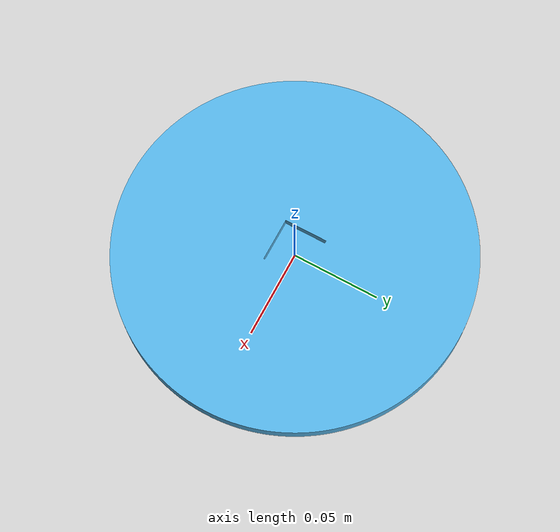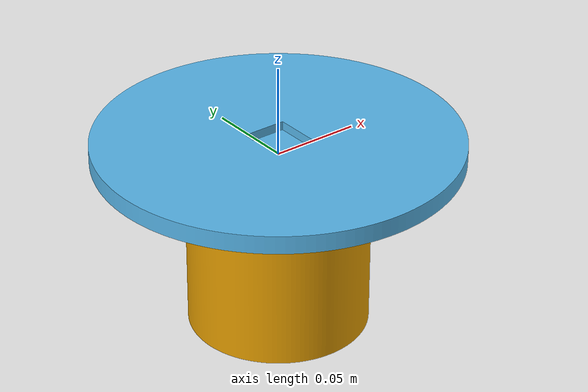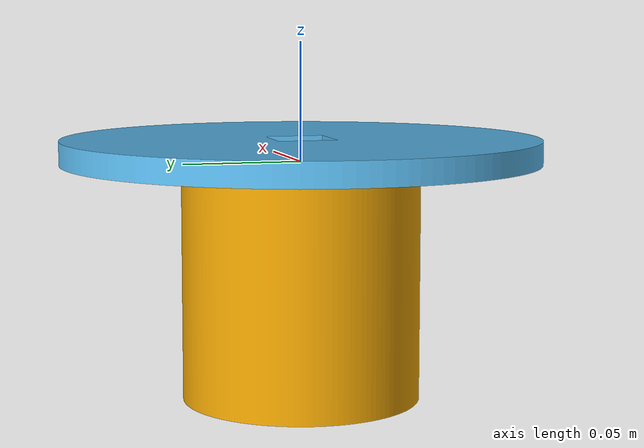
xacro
<?xml version="1.0"?>
<robot name="rotaion_plate">

    <link name="plate_body">
        <visual>
            <geometry>
                <mesh
                    filename="package://thesis_project/motomini/meshes/plate/motomini_plate-plate_body.stl"
                    scale="0.001 0.001 0.001" />
            </geometry>
        </visual>
        <collision>
            <geometry>
                <mesh
                    filename="package://thesis_project/motomini/meshes/plate/motomini_plate-plate_body.stl"
                    scale="0.001 0.001 0.001" />
            </geometry>
        </collision>
        <inertial>
            <mass value="1.0" />
            <origin xyz="0 0 0" />
            <inertia ixx="0.01" ixy="0" ixz="0" iyy="0.01" iyz="0" izz="0.01" />
        </inertial>
    </link>

    <link name="plate">
        <visual>
            <geometry>
                <mesh
                    filename="package://thesis_project/motomini/meshes/plate/motomini_plate-plate.stl"
                    scale="0.001 0.001 0.001" />
            </geometry>
        </visual>
        <collision>
            <geometry>
                <mesh
                    filename="package://thesis_project/motomini/meshes/plate/motomini_plate-plate.stl"
                    scale="0.001 0.001 0.001" />
            </geometry>
        </collision>
        <inertial>
            <mass value="1.0" />
            <origin xyz="0 0 0" />
            <inertia ixx="0.01" ixy="0" ixz="0" iyy="0.01" iyz="0" izz="0.01" />
        </inertial>
    </link>

    <joint name="plate_rotation_joint" type="revolute">
        <parent link="plate_body" />
        <child link="plate" />
        <origin xyz="0 0 0" rpy="0 0 0" />
        <axis xyz="0 0 1" />
        <limit lower="-3.14" upper="3.14" effort="10" velocity="1" />
    </joint>

</robot>
